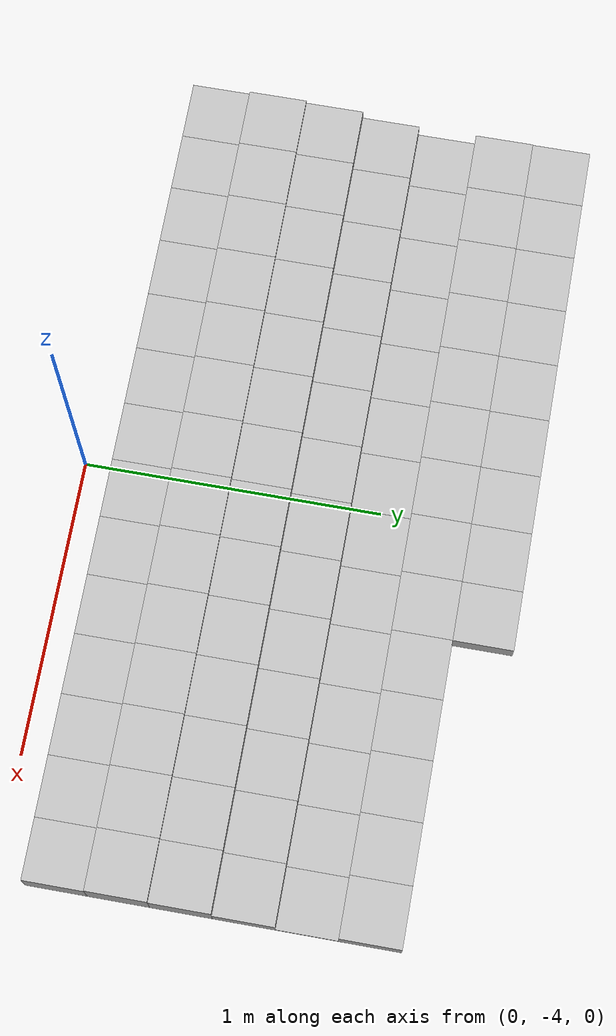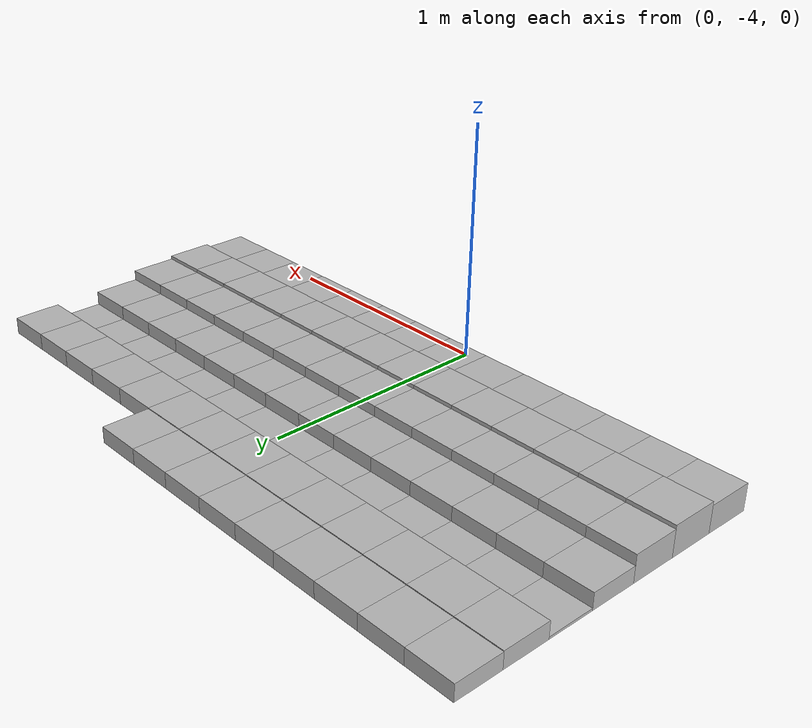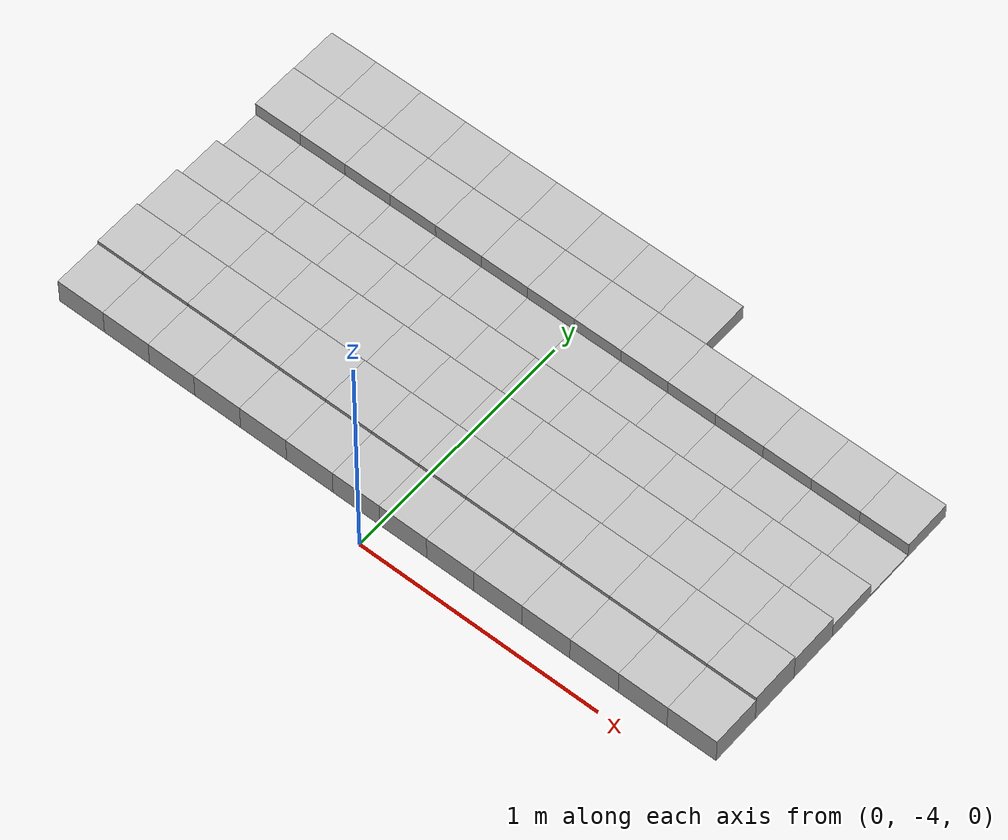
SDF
<sdf version="1.6">
 <model name="Terrain">
  <static>true</static>
  <link name="box_13_0">
   <pose>-1.3 -2.6 0.0339991204989 0 0 0</pose>
   <inertial>
    <mass>1.0</mass>
    <inertia><ixx>0.0</ixx><ixy>0.0</ixy><ixz>0.0</ixz><iyy>0.0</iyy><iyz>0.0</iyz><izz>0.0</izz></inertia>
   </inertial>
   <collision name="collision"><geometry><box><size>0.2 0.2 0.0679982409977</size></box></geometry></collision>
   <visual name="visual"><geometry><box><size>0.2 0.2 0.0679982409977</size></box></geometry></visual>
  </link>
  <link name="box_13_1">
   <pose>-1.1 -2.6 0.0339991204989 0 0 0</pose>
   <inertial>
    <mass>1.0</mass>
    <inertia><ixx>0.0</ixx><ixy>0.0</ixy><ixz>0.0</ixz><iyy>0.0</iyy><iyz>0.0</iyz><izz>0.0</izz></inertia>
   </inertial>
   <collision name="collision"><geometry><box><size>0.2 0.2 0.0679982409977</size></box></geometry></collision>
   <visual name="visual"><geometry><box><size>0.2 0.2 0.0679982409977</size></box></geometry></visual>
  </link>
  <link name="box_13_2">
   <pose>-0.9 -2.6 0.0339991204989 0 0 0</pose>
   <inertial>
    <mass>1.0</mass>
    <inertia><ixx>0.0</ixx><ixy>0.0</ixy><ixz>0.0</ixz><iyy>0.0</iyy><iyz>0.0</iyz><izz>0.0</izz></inertia>
   </inertial>
   <collision name="collision"><geometry><box><size>0.2 0.2 0.0679982409977</size></box></geometry></collision>
   <visual name="visual"><geometry><box><size>0.2 0.2 0.0679982409977</size></box></geometry></visual>
  </link>
  <link name="box_13_3">
   <pose>-0.7 -2.6 0.0339991204989 0 0 0</pose>
   <inertial>
    <mass>1.0</mass>
    <inertia><ixx>0.0</ixx><ixy>0.0</ixy><ixz>0.0</ixz><iyy>0.0</iyy><iyz>0.0</iyz><izz>0.0</izz></inertia>
   </inertial>
   <collision name="collision"><geometry><box><size>0.2 0.2 0.0679982409977</size></box></geometry></collision>
   <visual name="visual"><geometry><box><size>0.2 0.2 0.0679982409977</size></box></geometry></visual>
  </link>
  <link name="box_13_4">
   <pose>-0.5 -2.6 0.0339991204989 0 0 0</pose>
   <inertial>
    <mass>1.0</mass>
    <inertia><ixx>0.0</ixx><ixy>0.0</ixy><ixz>0.0</ixz><iyy>0.0</iyy><iyz>0.0</iyz><izz>0.0</izz></inertia>
   </inertial>
   <collision name="collision"><geometry><box><size>0.2 0.2 0.0679982409977</size></box></geometry></collision>
   <visual name="visual"><geometry><box><size>0.2 0.2 0.0679982409977</size></box></geometry></visual>
  </link>
  <link name="box_13_5">
   <pose>-0.3 -2.6 0.0339991204989 0 0 0</pose>
   <inertial>
    <mass>1.0</mass>
    <inertia><ixx>0.0</ixx><ixy>0.0</ixy><ixz>0.0</ixz><iyy>0.0</iyy><iyz>0.0</iyz><izz>0.0</izz></inertia>
   </inertial>
   <collision name="collision"><geometry><box><size>0.2 0.2 0.0679982409977</size></box></geometry></collision>
   <visual name="visual"><geometry><box><size>0.2 0.2 0.0679982409977</size></box></geometry></visual>
  </link>
  <link name="box_13_6">
   <pose>-0.1 -2.6 0.0339991204989 0 0 0</pose>
   <inertial>
    <mass>1.0</mass>
    <inertia><ixx>0.0</ixx><ixy>0.0</ixy><ixz>0.0</ixz><iyy>0.0</iyy><iyz>0.0</iyz><izz>0.0</izz></inertia>
   </inertial>
   <collision name="collision"><geometry><box><size>0.2 0.2 0.0679982409977</size></box></geometry></collision>
   <visual name="visual"><geometry><box><size>0.2 0.2 0.0679982409977</size></box></geometry></visual>
  </link>
  <link name="box_13_7">
   <pose>0.1 -2.6 0.0339991204989 0 0 0</pose>
   <inertial>
    <mass>1.0</mass>
    <inertia><ixx>0.0</ixx><ixy>0.0</ixy><ixz>0.0</ixz><iyy>0.0</iyy><iyz>0.0</iyz><izz>0.0</izz></inertia>
   </inertial>
   <collision name="collision"><geometry><box><size>0.2 0.2 0.0679982409977</size></box></geometry></collision>
   <visual name="visual"><geometry><box><size>0.2 0.2 0.0679982409977</size></box></geometry></visual>
  </link>
  <link name="box_13_8">
   <pose>0.3 -2.6 0.0339991204989 0 0 0</pose>
   <inertial>
    <mass>1.0</mass>
    <inertia><ixx>0.0</ixx><ixy>0.0</ixy><ixz>0.0</ixz><iyy>0.0</iyy><iyz>0.0</iyz><izz>0.0</izz></inertia>
   </inertial>
   <collision name="collision"><geometry><box><size>0.2 0.2 0.0679982409977</size></box></geometry></collision>
   <visual name="visual"><geometry><box><size>0.2 0.2 0.0679982409977</size></box></geometry></visual>
  </link>
  <link name="box_14_0">
   <pose>-1.3 -2.8 0.0356586918373 0 0 0</pose>
   <inertial>
    <mass>1.0</mass>
    <inertia><ixx>0.0</ixx><ixy>0.0</ixy><ixz>0.0</ixz><iyy>0.0</iyy><iyz>0.0</iyz><izz>0.0</izz></inertia>
   </inertial>
   <collision name="collision"><geometry><box><size>0.2 0.2 0.0713173836747</size></box></geometry></collision>
   <visual name="visual"><geometry><box><size>0.2 0.2 0.0713173836747</size></box></geometry></visual>
  </link>
  <link name="box_14_1">
   <pose>-1.1 -2.8 0.0356586918373 0 0 0</pose>
   <inertial>
    <mass>1.0</mass>
    <inertia><ixx>0.0</ixx><ixy>0.0</ixy><ixz>0.0</ixz><iyy>0.0</iyy><iyz>0.0</iyz><izz>0.0</izz></inertia>
   </inertial>
   <collision name="collision"><geometry><box><size>0.2 0.2 0.0713173836747</size></box></geometry></collision>
   <visual name="visual"><geometry><box><size>0.2 0.2 0.0713173836747</size></box></geometry></visual>
  </link>
  <link name="box_14_2">
   <pose>-0.9 -2.8 0.0356586918373 0 0 0</pose>
   <inertial>
    <mass>1.0</mass>
    <inertia><ixx>0.0</ixx><ixy>0.0</ixy><ixz>0.0</ixz><iyy>0.0</iyy><iyz>0.0</iyz><izz>0.0</izz></inertia>
   </inertial>
   <collision name="collision"><geometry><box><size>0.2 0.2 0.0713173836747</size></box></geometry></collision>
   <visual name="visual"><geometry><box><size>0.2 0.2 0.0713173836747</size></box></geometry></visual>
  </link>
  <link name="box_14_3">
   <pose>-0.7 -2.8 0.0356586918373 0 0 0</pose>
   <inertial>
    <mass>1.0</mass>
    <inertia><ixx>0.0</ixx><ixy>0.0</ixy><ixz>0.0</ixz><iyy>0.0</iyy><iyz>0.0</iyz><izz>0.0</izz></inertia>
   </inertial>
   <collision name="collision"><geometry><box><size>0.2 0.2 0.0713173836747</size></box></geometry></collision>
   <visual name="visual"><geometry><box><size>0.2 0.2 0.0713173836747</size></box></geometry></visual>
  </link>
  <link name="box_14_4">
   <pose>-0.5 -2.8 0.0356586918373 0 0 0</pose>
   <inertial>
    <mass>1.0</mass>
    <inertia><ixx>0.0</ixx><ixy>0.0</ixy><ixz>0.0</ixz><iyy>0.0</iyy><iyz>0.0</iyz><izz>0.0</izz></inertia>
   </inertial>
   <collision name="collision"><geometry><box><size>0.2 0.2 0.0713173836747</size></box></geometry></collision>
   <visual name="visual"><geometry><box><size>0.2 0.2 0.0713173836747</size></box></geometry></visual>
  </link>
  <link name="box_14_5">
   <pose>-0.3 -2.8 0.0356586918373 0 0 0</pose>
   <inertial>
    <mass>1.0</mass>
    <inertia><ixx>0.0</ixx><ixy>0.0</ixy><ixz>0.0</ixz><iyy>0.0</iyy><iyz>0.0</iyz><izz>0.0</izz></inertia>
   </inertial>
   <collision name="collision"><geometry><box><size>0.2 0.2 0.0713173836747</size></box></geometry></collision>
   <visual name="visual"><geometry><box><size>0.2 0.2 0.0713173836747</size></box></geometry></visual>
  </link>
  <link name="box_14_6">
   <pose>-0.1 -2.8 0.0356586918373 0 0 0</pose>
   <inertial>
    <mass>1.0</mass>
    <inertia><ixx>0.0</ixx><ixy>0.0</ixy><ixz>0.0</ixz><iyy>0.0</iyy><iyz>0.0</iyz><izz>0.0</izz></inertia>
   </inertial>
   <collision name="collision"><geometry><box><size>0.2 0.2 0.0713173836747</size></box></geometry></collision>
   <visual name="visual"><geometry><box><size>0.2 0.2 0.0713173836747</size></box></geometry></visual>
  </link>
  <link name="box_14_7">
   <pose>0.1 -2.8 0.0356586918373 0 0 0</pose>
   <inertial>
    <mass>1.0</mass>
    <inertia><ixx>0.0</ixx><ixy>0.0</ixy><ixz>0.0</ixz><iyy>0.0</iyy><iyz>0.0</iyz><izz>0.0</izz></inertia>
   </inertial>
   <collision name="collision"><geometry><box><size>0.2 0.2 0.0713173836747</size></box></geometry></collision>
   <visual name="visual"><geometry><box><size>0.2 0.2 0.0713173836747</size></box></geometry></visual>
  </link>
  <link name="box_14_8">
   <pose>0.3 -2.8 0.0356586918373 0 0 0</pose>
   <inertial>
    <mass>1.0</mass>
    <inertia><ixx>0.0</ixx><ixy>0.0</ixy><ixz>0.0</ixz><iyy>0.0</iyy><iyz>0.0</iyz><izz>0.0</izz></inertia>
   </inertial>
   <collision name="collision"><geometry><box><size>0.2 0.2 0.0713173836747</size></box></geometry></collision>
   <visual name="visual"><geometry><box><size>0.2 0.2 0.0713173836747</size></box></geometry></visual>
  </link>
  <link name="box_14_9">
   <pose>0.5 -2.8 0.0356586918373 0 0 0</pose>
   <inertial>
    <mass>1.0</mass>
    <inertia><ixx>0.0</ixx><ixy>0.0</ixy><ixz>0.0</ixz><iyy>0.0</iyy><iyz>0.0</iyz><izz>0.0</izz></inertia>
   </inertial>
   <collision name="collision"><geometry><box><size>0.2 0.2 0.0713173836747</size></box></geometry></collision>
   <visual name="visual"><geometry><box><size>0.2 0.2 0.0713173836747</size></box></geometry></visual>
  </link>
  <link name="box_14_10">
   <pose>0.7 -2.8 0.0356586918373 0 0 0</pose>
   <inertial>
    <mass>1.0</mass>
    <inertia><ixx>0.0</ixx><ixy>0.0</ixy><ixz>0.0</ixz><iyy>0.0</iyy><iyz>0.0</iyz><izz>0.0</izz></inertia>
   </inertial>
   <collision name="collision"><geometry><box><size>0.2 0.2 0.0713173836747</size></box></geometry></collision>
   <visual name="visual"><geometry><box><size>0.2 0.2 0.0713173836747</size></box></geometry></visual>
  </link>
  <link name="box_14_11">
   <pose>0.9 -2.8 0.0356586918373 0 0 0</pose>
   <inertial>
    <mass>1.0</mass>
    <inertia><ixx>0.0</ixx><ixy>0.0</ixy><ixz>0.0</ixz><iyy>0.0</iyy><iyz>0.0</iyz><izz>0.0</izz></inertia>
   </inertial>
   <collision name="collision"><geometry><box><size>0.2 0.2 0.0713173836747</size></box></geometry></collision>
   <visual name="visual"><geometry><box><size>0.2 0.2 0.0713173836747</size></box></geometry></visual>
  </link>
  <link name="box_14_12">
   <pose>1.1 -2.8 0.0356586918373 0 0 0</pose>
   <inertial>
    <mass>1.0</mass>
    <inertia><ixx>0.0</ixx><ixy>0.0</ixy><ixz>0.0</ixz><iyy>0.0</iyy><iyz>0.0</iyz><izz>0.0</izz></inertia>
   </inertial>
   <collision name="collision"><geometry><box><size>0.2 0.2 0.0713173836747</size></box></geometry></collision>
   <visual name="visual"><geometry><box><size>0.2 0.2 0.0713173836747</size></box></geometry></visual>
  </link>
  <link name="box_14_13">
   <pose>1.3 -2.8 0.0356586918373 0 0 0</pose>
   <inertial>
    <mass>1.0</mass>
    <inertia><ixx>0.0</ixx><ixy>0.0</ixy><ixz>0.0</ixz><iyy>0.0</iyy><iyz>0.0</iyz><izz>0.0</izz></inertia>
   </inertial>
   <collision name="collision"><geometry><box><size>0.2 0.2 0.0713173836747</size></box></geometry></collision>
   <visual name="visual"><geometry><box><size>0.2 0.2 0.0713173836747</size></box></geometry></visual>
  </link>
  <link name="box_15_0">
   <pose>-1.3 -3.0 0.00497859184319 0 0 0</pose>
   <inertial>
    <mass>1.0</mass>
    <inertia><ixx>0.0</ixx><ixy>0.0</ixy><ixz>0.0</ixz><iyy>0.0</iyy><iyz>0.0</iyz><izz>0.0</izz></inertia>
   </inertial>
   <collision name="collision"><geometry><box><size>0.2 0.2 0.00995718368637</size></box></geometry></collision>
   <visual name="visual"><geometry><box><size>0.2 0.2 0.00995718368637</size></box></geometry></visual>
  </link>
  <link name="box_15_1">
   <pose>-1.1 -3.0 0.00497859184319 0 0 0</pose>
   <inertial>
    <mass>1.0</mass>
    <inertia><ixx>0.0</ixx><ixy>0.0</ixy><ixz>0.0</ixz><iyy>0.0</iyy><iyz>0.0</iyz><izz>0.0</izz></inertia>
   </inertial>
   <collision name="collision"><geometry><box><size>0.2 0.2 0.00995718368637</size></box></geometry></collision>
   <visual name="visual"><geometry><box><size>0.2 0.2 0.00995718368637</size></box></geometry></visual>
  </link>
  <link name="box_15_2">
   <pose>-0.9 -3.0 0.00497859184319 0 0 0</pose>
   <inertial>
    <mass>1.0</mass>
    <inertia><ixx>0.0</ixx><ixy>0.0</ixy><ixz>0.0</ixz><iyy>0.0</iyy><iyz>0.0</iyz><izz>0.0</izz></inertia>
   </inertial>
   <collision name="collision"><geometry><box><size>0.2 0.2 0.00995718368637</size></box></geometry></collision>
   <visual name="visual"><geometry><box><size>0.2 0.2 0.00995718368637</size></box></geometry></visual>
  </link>
  <link name="box_15_3">
   <pose>-0.7 -3.0 0.00497859184319 0 0 0</pose>
   <inertial>
    <mass>1.0</mass>
    <inertia><ixx>0.0</ixx><ixy>0.0</ixy><ixz>0.0</ixz><iyy>0.0</iyy><iyz>0.0</iyz><izz>0.0</izz></inertia>
   </inertial>
   <collision name="collision"><geometry><box><size>0.2 0.2 0.00995718368637</size></box></geometry></collision>
   <visual name="visual"><geometry><box><size>0.2 0.2 0.00995718368637</size></box></geometry></visual>
  </link>
  <link name="box_15_4">
   <pose>-0.5 -3.0 0.00497859184319 0 0 0</pose>
   <inertial>
    <mass>1.0</mass>
    <inertia><ixx>0.0</ixx><ixy>0.0</ixy><ixz>0.0</ixz><iyy>0.0</iyy><iyz>0.0</iyz><izz>0.0</izz></inertia>
   </inertial>
   <collision name="collision"><geometry><box><size>0.2 0.2 0.00995718368637</size></box></geometry></collision>
   <visual name="visual"><geometry><box><size>0.2 0.2 0.00995718368637</size></box></geometry></visual>
  </link>
  <link name="box_15_5">
   <pose>-0.3 -3.0 0.00497859184319 0 0 0</pose>
   <inertial>
    <mass>1.0</mass>
    <inertia><ixx>0.0</ixx><ixy>0.0</ixy><ixz>0.0</ixz><iyy>0.0</iyy><iyz>0.0</iyz><izz>0.0</izz></inertia>
   </inertial>
   <collision name="collision"><geometry><box><size>0.2 0.2 0.00995718368637</size></box></geometry></collision>
   <visual name="visual"><geometry><box><size>0.2 0.2 0.00995718368637</size></box></geometry></visual>
  </link>
  <link name="box_15_6">
   <pose>-0.1 -3.0 0.00497859184319 0 0 0</pose>
   <inertial>
    <mass>1.0</mass>
    <inertia><ixx>0.0</ixx><ixy>0.0</ixy><ixz>0.0</ixz><iyy>0.0</iyy><iyz>0.0</iyz><izz>0.0</izz></inertia>
   </inertial>
   <collision name="collision"><geometry><box><size>0.2 0.2 0.00995718368637</size></box></geometry></collision>
   <visual name="visual"><geometry><box><size>0.2 0.2 0.00995718368637</size></box></geometry></visual>
  </link>
  <link name="box_15_7">
   <pose>0.1 -3.0 0.00497859184319 0 0 0</pose>
   <inertial>
    <mass>1.0</mass>
    <inertia><ixx>0.0</ixx><ixy>0.0</ixy><ixz>0.0</ixz><iyy>0.0</iyy><iyz>0.0</iyz><izz>0.0</izz></inertia>
   </inertial>
   <collision name="collision"><geometry><box><size>0.2 0.2 0.00995718368637</size></box></geometry></collision>
   <visual name="visual"><geometry><box><size>0.2 0.2 0.00995718368637</size></box></geometry></visual>
  </link>
  <link name="box_15_8">
   <pose>0.3 -3.0 0.00497859184319 0 0 0</pose>
   <inertial>
    <mass>1.0</mass>
    <inertia><ixx>0.0</ixx><ixy>0.0</ixy><ixz>0.0</ixz><iyy>0.0</iyy><iyz>0.0</iyz><izz>0.0</izz></inertia>
   </inertial>
   <collision name="collision"><geometry><box><size>0.2 0.2 0.00995718368637</size></box></geometry></collision>
   <visual name="visual"><geometry><box><size>0.2 0.2 0.00995718368637</size></box></geometry></visual>
  </link>
  <link name="box_15_9">
   <pose>0.5 -3.0 0.00497859184319 0 0 0</pose>
   <inertial>
    <mass>1.0</mass>
    <inertia><ixx>0.0</ixx><ixy>0.0</ixy><ixz>0.0</ixz><iyy>0.0</iyy><iyz>0.0</iyz><izz>0.0</izz></inertia>
   </inertial>
   <collision name="collision"><geometry><box><size>0.2 0.2 0.00995718368637</size></box></geometry></collision>
   <visual name="visual"><geometry><box><size>0.2 0.2 0.00995718368637</size></box></geometry></visual>
  </link>
  <link name="box_15_10">
   <pose>0.7 -3.0 0.00497859184319 0 0 0</pose>
   <inertial>
    <mass>1.0</mass>
    <inertia><ixx>0.0</ixx><ixy>0.0</ixy><ixz>0.0</ixz><iyy>0.0</iyy><iyz>0.0</iyz><izz>0.0</izz></inertia>
   </inertial>
   <collision name="collision"><geometry><box><size>0.2 0.2 0.00995718368637</size></box></geometry></collision>
   <visual name="visual"><geometry><box><size>0.2 0.2 0.00995718368637</size></box></geometry></visual>
  </link>
  <link name="box_15_11">
   <pose>0.9 -3.0 0.00497859184319 0 0 0</pose>
   <inertial>
    <mass>1.0</mass>
    <inertia><ixx>0.0</ixx><ixy>0.0</ixy><ixz>0.0</ixz><iyy>0.0</iyy><iyz>0.0</iyz><izz>0.0</izz></inertia>
   </inertial>
   <collision name="collision"><geometry><box><size>0.2 0.2 0.00995718368637</size></box></geometry></collision>
   <visual name="visual"><geometry><box><size>0.2 0.2 0.00995718368637</size></box></geometry></visual>
  </link>
  <link name="box_15_12">
   <pose>1.1 -3.0 0.00497859184319 0 0 0</pose>
   <inertial>
    <mass>1.0</mass>
    <inertia><ixx>0.0</ixx><ixy>0.0</ixy><ixz>0.0</ixz><iyy>0.0</iyy><iyz>0.0</iyz><izz>0.0</izz></inertia>
   </inertial>
   <collision name="collision"><geometry><box><size>0.2 0.2 0.00995718368637</size></box></geometry></collision>
   <visual name="visual"><geometry><box><size>0.2 0.2 0.00995718368637</size></box></geometry></visual>
  </link>
  <link name="box_15_13">
   <pose>1.3 -3.0 0.00497859184319 0 0 0</pose>
   <inertial>
    <mass>1.0</mass>
    <inertia><ixx>0.0</ixx><ixy>0.0</ixy><ixz>0.0</ixz><iyy>0.0</iyy><iyz>0.0</iyz><izz>0.0</izz></inertia>
   </inertial>
   <collision name="collision"><geometry><box><size>0.2 0.2 0.00995718368637</size></box></geometry></collision>
   <visual name="visual"><geometry><box><size>0.2 0.2 0.00995718368637</size></box></geometry></visual>
  </link>
  <link name="box_16_0">
   <pose>-1.3 -3.2 0.034655805832 0 0 0</pose>
   <inertial>
    <mass>1.0</mass>
    <inertia><ixx>0.0</ixx><ixy>0.0</ixy><ixz>0.0</ixz><iyy>0.0</iyy><iyz>0.0</iyz><izz>0.0</izz></inertia>
   </inertial>
   <collision name="collision"><geometry><box><size>0.2 0.2 0.069311611664</size></box></geometry></collision>
   <visual name="visual"><geometry><box><size>0.2 0.2 0.069311611664</size></box></geometry></visual>
  </link>
  <link name="box_16_1">
   <pose>-1.1 -3.2 0.034655805832 0 0 0</pose>
   <inertial>
    <mass>1.0</mass>
    <inertia><ixx>0.0</ixx><ixy>0.0</ixy><ixz>0.0</ixz><iyy>0.0</iyy><iyz>0.0</iyz><izz>0.0</izz></inertia>
   </inertial>
   <collision name="collision"><geometry><box><size>0.2 0.2 0.069311611664</size></box></geometry></collision>
   <visual name="visual"><geometry><box><size>0.2 0.2 0.069311611664</size></box></geometry></visual>
  </link>
  <link name="box_16_2">
   <pose>-0.9 -3.2 0.034655805832 0 0 0</pose>
   <inertial>
    <mass>1.0</mass>
    <inertia><ixx>0.0</ixx><ixy>0.0</ixy><ixz>0.0</ixz><iyy>0.0</iyy><iyz>0.0</iyz><izz>0.0</izz></inertia>
   </inertial>
   <collision name="collision"><geometry><box><size>0.2 0.2 0.069311611664</size></box></geometry></collision>
   <visual name="visual"><geometry><box><size>0.2 0.2 0.069311611664</size></box></geometry></visual>
  </link>
  <link name="box_16_3">
   <pose>-0.7 -3.2 0.034655805832 0 0 0</pose>
   <inertial>
    <mass>1.0</mass>
    <inertia><ixx>0.0</ixx><ixy>0.0</ixy><ixz>0.0</ixz><iyy>0.0</iyy><iyz>0.0</iyz><izz>0.0</izz></inertia>
   </inertial>
   <collision name="collision"><geometry><box><size>0.2 0.2 0.069311611664</size></box></geometry></collision>
   <visual name="visual"><geometry><box><size>0.2 0.2 0.069311611664</size></box></geometry></visual>
  </link>
  <link name="box_16_4">
   <pose>-0.5 -3.2 0.034655805832 0 0 0</pose>
   <inertial>
    <mass>1.0</mass>
    <inertia><ixx>0.0</ixx><ixy>0.0</ixy><ixz>0.0</ixz><iyy>0.0</iyy><iyz>0.0</iyz><izz>0.0</izz></inertia>
   </inertial>
   <collision name="collision"><geometry><box><size>0.2 0.2 0.069311611664</size></box></geometry></collision>
   <visual name="visual"><geometry><box><size>0.2 0.2 0.069311611664</size></box></geometry></visual>
  </link>
  <link name="box_16_5">
   <pose>-0.3 -3.2 0.034655805832 0 0 0</pose>
   <inertial>
    <mass>1.0</mass>
    <inertia><ixx>0.0</ixx><ixy>0.0</ixy><ixz>0.0</ixz><iyy>0.0</iyy><iyz>0.0</iyz><izz>0.0</izz></inertia>
   </inertial>
   <collision name="collision"><geometry><box><size>0.2 0.2 0.069311611664</size></box></geometry></collision>
   <visual name="visual"><geometry><box><size>0.2 0.2 0.069311611664</size></box></geometry></visual>
  </link>
  <link name="box_16_6">
   <pose>-0.1 -3.2 0.034655805832 0 0 0</pose>
   <inertial>
    <mass>1.0</mass>
    <inertia><ixx>0.0</ixx><ixy>0.0</ixy><ixz>0.0</ixz><iyy>0.0</iyy><iyz>0.0</iyz><izz>0.0</izz></inertia>
   </inertial>
   <collision name="collision"><geometry><box><size>0.2 0.2 0.069311611664</size></box></geometry></collision>
   <visual name="visual"><geometry><box><size>0.2 0.2 0.069311611664</size></box></geometry></visual>
  </link>
  <link name="box_16_7">
   <pose>0.1 -3.2 0.034655805832 0 0 0</pose>
   <inertial>
    <mass>1.0</mass>
    <inertia><ixx>0.0</ixx><ixy>0.0</ixy><ixz>0.0</ixz><iyy>0.0</iyy><iyz>0.0</iyz><izz>0.0</izz></inertia>
   </inertial>
   <collision name="collision"><geometry><box><size>0.2 0.2 0.069311611664</size></box></geometry></collision>
   <visual name="visual"><geometry><box><size>0.2 0.2 0.069311611664</size></box></geometry></visual>
  </link>
  <link name="box_16_8">
   <pose>0.3 -3.2 0.034655805832 0 0 0</pose>
   <inertial>
    <mass>1.0</mass>
    <inertia><ixx>0.0</ixx><ixy>0.0</ixy><ixz>0.0</ixz><iyy>0.0</iyy><iyz>0.0</iyz><izz>0.0</izz></inertia>
   </inertial>
   <collision name="collision"><geometry><box><size>0.2 0.2 0.069311611664</size></box></geometry></collision>
   <visual name="visual"><geometry><box><size>0.2 0.2 0.069311611664</size></box></geometry></visual>
  </link>
  <link name="box_16_9">
   <pose>0.5 -3.2 0.034655805832 0 0 0</pose>
   <inertial>
    <mass>1.0</mass>
    <inertia><ixx>0.0</ixx><ixy>0.0</ixy><ixz>0.0</ixz><iyy>0.0</iyy><iyz>0.0</iyz><izz>0.0</izz></inertia>
   </inertial>
   <collision name="collision"><geometry><box><size>0.2 0.2 0.069311611664</size></box></geometry></collision>
   <visual name="visual"><geometry><box><size>0.2 0.2 0.069311611664</size></box></geometry></visual>
  </link>
  <link name="box_16_10">
   <pose>0.7 -3.2 0.034655805832 0 0 0</pose>
   <inertial>
    <mass>1.0</mass>
    <inertia><ixx>0.0</ixx><ixy>0.0</ixy><ixz>0.0</ixz><iyy>0.0</iyy><iyz>0.0</iyz><izz>0.0</izz></inertia>
   </inertial>
   <collision name="collision"><geometry><box><size>0.2 0.2 0.069311611664</size></box></geometry></collision>
   <visual name="visual"><geometry><box><size>0.2 0.2 0.069311611664</size></box></geometry></visual>
  </link>
  <link name="box_16_11">
   <pose>0.9 -3.2 0.034655805832 0 0 0</pose>
   <inertial>
    <mass>1.0</mass>
    <inertia><ixx>0.0</ixx><ixy>0.0</ixy><ixz>0.0</ixz><iyy>0.0</iyy><iyz>0.0</iyz><izz>0.0</izz></inertia>
   </inertial>
   <collision name="collision"><geometry><box><size>0.2 0.2 0.069311611664</size></box></geometry></collision>
   <visual name="visual"><geometry><box><size>0.2 0.2 0.069311611664</size></box></geometry></visual>
  </link>
  <link name="box_16_12">
   <pose>1.1 -3.2 0.034655805832 0 0 0</pose>
   <inertial>
    <mass>1.0</mass>
    <inertia><ixx>0.0</ixx><ixy>0.0</ixy><ixz>0.0</ixz><iyy>0.0</iyy><iyz>0.0</iyz><izz>0.0</izz></inertia>
   </inertial>
   <collision name="collision"><geometry><box><size>0.2 0.2 0.069311611664</size></box></geometry></collision>
   <visual name="visual"><geometry><box><size>0.2 0.2 0.069311611664</size></box></geometry></visual>
  </link>
  <link name="box_16_13">
   <pose>1.3 -3.2 0.034655805832 0 0 0</pose>
   <inertial>
    <mass>1.0</mass>
    <inertia><ixx>0.0</ixx><ixy>0.0</ixy><ixz>0.0</ixz><iyy>0.0</iyy><iyz>0.0</iyz><izz>0.0</izz></inertia>
   </inertial>
   <collision name="collision"><geometry><box><size>0.2 0.2 0.069311611664</size></box></geometry></collision>
   <visual name="visual"><geometry><box><size>0.2 0.2 0.069311611664</size></box></geometry></visual>
  </link>
  <link name="box_17_0">
   <pose>-1.3 -3.4 0.0564299051171 0 0 0</pose>
   <inertial>
    <mass>1.0</mass>
    <inertia><ixx>0.0</ixx><ixy>0.0</ixy><ixz>0.0</ixz><iyy>0.0</iyy><iyz>0.0</iyz><izz>0.0</izz></inertia>
   </inertial>
   <collision name="collision"><geometry><box><size>0.2 0.2 0.112859810234</size></box></geometry></collision>
   <visual name="visual"><geometry><box><size>0.2 0.2 0.112859810234</size></box></geometry></visual>
  </link>
  <link name="box_17_1">
   <pose>-1.1 -3.4 0.0564299051171 0 0 0</pose>
   <inertial>
    <mass>1.0</mass>
    <inertia><ixx>0.0</ixx><ixy>0.0</ixy><ixz>0.0</ixz><iyy>0.0</iyy><iyz>0.0</iyz><izz>0.0</izz></inertia>
   </inertial>
   <collision name="collision"><geometry><box><size>0.2 0.2 0.112859810234</size></box></geometry></collision>
   <visual name="visual"><geometry><box><size>0.2 0.2 0.112859810234</size></box></geometry></visual>
  </link>
  <link name="box_17_2">
   <pose>-0.9 -3.4 0.0564299051171 0 0 0</pose>
   <inertial>
    <mass>1.0</mass>
    <inertia><ixx>0.0</ixx><ixy>0.0</ixy><ixz>0.0</ixz><iyy>0.0</iyy><iyz>0.0</iyz><izz>0.0</izz></inertia>
   </inertial>
   <collision name="collision"><geometry><box><size>0.2 0.2 0.112859810234</size></box></geometry></collision>
   <visual name="visual"><geometry><box><size>0.2 0.2 0.112859810234</size></box></geometry></visual>
  </link>
  <link name="box_17_3">
   <pose>-0.7 -3.4 0.0564299051171 0 0 0</pose>
   <inertial>
    <mass>1.0</mass>
    <inertia><ixx>0.0</ixx><ixy>0.0</ixy><ixz>0.0</ixz><iyy>0.0</iyy><iyz>0.0</iyz><izz>0.0</izz></inertia>
   </inertial>
   <collision name="collision"><geometry><box><size>0.2 0.2 0.112859810234</size></box></geometry></collision>
   <visual name="visual"><geometry><box><size>0.2 0.2 0.112859810234</size></box></geometry></visual>
  </link>
  <link name="box_17_4">
   <pose>-0.5 -3.4 0.0564299051171 0 0 0</pose>
   <inertial>
    <mass>1.0</mass>
    <inertia><ixx>0.0</ixx><ixy>0.0</ixy><ixz>0.0</ixz><iyy>0.0</iyy><iyz>0.0</iyz><izz>0.0</izz></inertia>
   </inertial>
   <collision name="collision"><geometry><box><size>0.2 0.2 0.112859810234</size></box></geometry></collision>
   <visual name="visual"><geometry><box><size>0.2 0.2 0.112859810234</size></box></geometry></visual>
  </link>
  <link name="box_17_5">
   <pose>-0.3 -3.4 0.0564299051171 0 0 0</pose>
   <inertial>
    <mass>1.0</mass>
    <inertia><ixx>0.0</ixx><ixy>0.0</ixy><ixz>0.0</ixz><iyy>0.0</iyy><iyz>0.0</iyz><izz>0.0</izz></inertia>
   </inertial>
   <collision name="collision"><geometry><box><size>0.2 0.2 0.112859810234</size></box></geometry></collision>
   <visual name="visual"><geometry><box><size>0.2 0.2 0.112859810234</size></box></geometry></visual>
  </link>
  <link name="box_17_6">
   <pose>-0.1 -3.4 0.0564299051171 0 0 0</pose>
   <inertial>
    <mass>1.0</mass>
    <inertia><ixx>0.0</ixx><ixy>0.0</ixy><ixz>0.0</ixz><iyy>0.0</iyy><iyz>0.0</iyz><izz>0.0</izz></inertia>
   </inertial>
   <collision name="collision"><geometry><box><size>0.2 0.2 0.112859810234</size></box></geometry></collision>
   <visual name="visual"><geometry><box><size>0.2 0.2 0.112859810234</size></box></geometry></visual>
  </link>
  <link name="box_17_7">
   <pose>0.1 -3.4 0.0564299051171 0 0 0</pose>
   <inertial>
    <mass>1.0</mass>
    <inertia><ixx>0.0</ixx><ixy>0.0</ixy><ixz>0.0</ixz><iyy>0.0</iyy><iyz>0.0</iyz><izz>0.0</izz></inertia>
   </inertial>
   <collision name="collision"><geometry><box><size>0.2 0.2 0.112859810234</size></box></geometry></collision>
   <visual name="visual"><geometry><box><size>0.2 0.2 0.112859810234</size></box></geometry></visual>
  </link>
  <link name="box_17_8">
   <pose>0.3 -3.4 0.0564299051171 0 0 0</pose>
   <inertial>
    <mass>1.0</mass>
    <inertia><ixx>0.0</ixx><ixy>0.0</ixy><ixz>0.0</ixz><iyy>0.0</iyy><iyz>0.0</iyz><izz>0.0</izz></inertia>
   </inertial>
   <collision name="collision"><geometry><box><size>0.2 0.2 0.112859810234</size></box></geometry></collision>
   <visual name="visual"><geometry><box><size>0.2 0.2 0.112859810234</size></box></geometry></visual>
  </link>
  <link name="box_17_9">
   <pose>0.5 -3.4 0.0564299051171 0 0 0</pose>
   <inertial>
    <mass>1.0</mass>
    <inertia><ixx>0.0</ixx><ixy>0.0</ixy><ixz>0.0</ixz><iyy>0.0</iyy><iyz>0.0</iyz><izz>0.0</izz></inertia>
   </inertial>
   <collision name="collision"><geometry><box><size>0.2 0.2 0.112859810234</size></box></geometry></collision>
   <visual name="visual"><geometry><box><size>0.2 0.2 0.112859810234</size></box></geometry></visual>
  </link>
  <link name="box_17_10">
   <pose>0.7 -3.4 0.0564299051171 0 0 0</pose>
   <inertial>
    <mass>1.0</mass>
    <inertia><ixx>0.0</ixx><ixy>0.0</ixy><ixz>0.0</ixz><iyy>0.0</iyy><iyz>0.0</iyz><izz>0.0</izz></inertia>
   </inertial>
   <collision name="collision"><geometry><box><size>0.2 0.2 0.112859810234</size></box></geometry></collision>
   <visual name="visual"><geometry><box><size>0.2 0.2 0.112859810234</size></box></geometry></visual>
  </link>
  <link name="box_17_11">
   <pose>0.9 -3.4 0.0564299051171 0 0 0</pose>
   <inertial>
    <mass>1.0</mass>
    <inertia><ixx>0.0</ixx><ixy>0.0</ixy><ixz>0.0</ixz><iyy>0.0</iyy><iyz>0.0</iyz><izz>0.0</izz></inertia>
   </inertial>
   <collision name="collision"><geometry><box><size>0.2 0.2 0.112859810234</size></box></geometry></collision>
   <visual name="visual"><geometry><box><size>0.2 0.2 0.112859810234</size></box></geometry></visual>
  </link>
  <link name="box_17_12">
   <pose>1.1 -3.4 0.0564299051171 0 0 0</pose>
   <inertial>
    <mass>1.0</mass>
    <inertia><ixx>0.0</ixx><ixy>0.0</ixy><ixz>0.0</ixz><iyy>0.0</iyy><iyz>0.0</iyz><izz>0.0</izz></inertia>
   </inertial>
   <collision name="collision"><geometry><box><size>0.2 0.2 0.112859810234</size></box></geometry></collision>
   <visual name="visual"><geometry><box><size>0.2 0.2 0.112859810234</size></box></geometry></visual>
  </link>
  <link name="box_17_13">
   <pose>1.3 -3.4 0.0564299051171 0 0 0</pose>
   <inertial>
    <mass>1.0</mass>
    <inertia><ixx>0.0</ixx><ixy>0.0</ixy><ixz>0.0</ixz><iyy>0.0</iyy><iyz>0.0</iyz><izz>0.0</izz></inertia>
   </inertial>
   <collision name="collision"><geometry><box><size>0.2 0.2 0.112859810234</size></box></geometry></collision>
   <visual name="visual"><geometry><box><size>0.2 0.2 0.112859810234</size></box></geometry></visual>
  </link>
  <link name="box_18_0">
   <pose>-1.3 -3.6 0.0641254640651 0 0 0</pose>
   <inertial>
    <mass>1.0</mass>
    <inertia><ixx>0.0</ixx><ixy>0.0</ixy><ixz>0.0</ixz><iyy>0.0</iyy><iyz>0.0</iyz><izz>0.0</izz></inertia>
   </inertial>
   <collision name="collision"><geometry><box><size>0.2 0.2 0.12825092813</size></box></geometry></collision>
   <visual name="visual"><geometry><box><size>0.2 0.2 0.12825092813</size></box></geometry></visual>
  </link>
  <link name="box_18_1">
   <pose>-1.1 -3.6 0.0641254640651 0 0 0</pose>
   <inertial>
    <mass>1.0</mass>
    <inertia><ixx>0.0</ixx><ixy>0.0</ixy><ixz>0.0</ixz><iyy>0.0</iyy><iyz>0.0</iyz><izz>0.0</izz></inertia>
   </inertial>
   <collision name="collision"><geometry><box><size>0.2 0.2 0.12825092813</size></box></geometry></collision>
   <visual name="visual"><geometry><box><size>0.2 0.2 0.12825092813</size></box></geometry></visual>
  </link>
  <link name="box_18_2">
   <pose>-0.9 -3.6 0.0641254640651 0 0 0</pose>
   <inertial>
    <mass>1.0</mass>
    <inertia><ixx>0.0</ixx><ixy>0.0</ixy><ixz>0.0</ixz><iyy>0.0</iyy><iyz>0.0</iyz><izz>0.0</izz></inertia>
   </inertial>
   <collision name="collision"><geometry><box><size>0.2 0.2 0.12825092813</size></box></geometry></collision>
   <visual name="visual"><geometry><box><size>0.2 0.2 0.12825092813</size></box></geometry></visual>
  </link>
  <link name="box_18_3">
   <pose>-0.7 -3.6 0.0641254640651 0 0 0</pose>
   <inertial>
    <mass>1.0</mass>
    <inertia><ixx>0.0</ixx><ixy>0.0</ixy><ixz>0.0</ixz><iyy>0.0</iyy><iyz>0.0</iyz><izz>0.0</izz></inertia>
   </inertial>
   <collision name="collision"><geometry><box><size>0.2 0.2 0.12825092813</size></box></geometry></collision>
   <visual name="visual"><geometry><box><size>0.2 0.2 0.12825092813</size></box></geometry></visual>
  </link>
  <link name="box_18_4">
   <pose>-0.5 -3.6 0.0641254640651 0 0 0</pose>
   <inertial>
    <mass>1.0</mass>
    <inertia><ixx>0.0</ixx><ixy>0.0</ixy><ixz>0.0</ixz><iyy>0.0</iyy><iyz>0.0</iyz><izz>0.0</izz></inertia>
   </inertial>
   <collision name="collision"><geometry><box><size>0.2 0.2 0.12825092813</size></box></geometry></collision>
   <visual name="visual"><geometry><box><size>0.2 0.2 0.12825092813</size></box></geometry></visual>
  </link>
  <link name="box_18_5">
   <pose>-0.3 -3.6 0.0641254640651 0 0 0</pose>
   <inertial>
    <mass>1.0</mass>
    <inertia><ixx>0.0</ixx><ixy>0.0</ixy><ixz>0.0</ixz><iyy>0.0</iyy><iyz>0.0</iyz><izz>0.0</izz></inertia>
   </inertial>
   <collision name="collision"><geometry><box><size>0.2 0.2 0.12825092813</size></box></geometry></collision>
   <visual name="visual"><geometry><box><size>0.2 0.2 0.12825092813</size></box></geometry></visual>
  </link>
  <link name="box_18_6">
   <pose>-0.1 -3.6 0.0641254640651 0 0 0</pose>
   <inertial>
    <mass>1.0</mass>
    <inertia><ixx>0.0</ixx><ixy>0.0</ixy><ixz>0.0</ixz><iyy>0.0</iyy><iyz>0.0</iyz><izz>0.0</izz></inertia>
   </inertial>
   <collision name="collision"><geometry><box><size>0.2 0.2 0.12825092813</size></box></geometry></collision>
   <visual name="visual"><geometry><box><size>0.2 0.2 0.12825092813</size></box></geometry></visual>
  </link>
  <link name="box_18_7">
   <pose>0.1 -3.6 0.0641254640651 0 0 0</pose>
   <inertial>
    <mass>1.0</mass>
    <inertia><ixx>0.0</ixx><ixy>0.0</ixy><ixz>0.0</ixz><iyy>0.0</iyy><iyz>0.0</iyz><izz>0.0</izz></inertia>
   </inertial>
   <collision name="collision"><geometry><box><size>0.2 0.2 0.12825092813</size></box></geometry></collision>
   <visual name="visual"><geometry><box><size>0.2 0.2 0.12825092813</size></box></geometry></visual>
  </link>
  <link name="box_18_8">
   <pose>0.3 -3.6 0.0641254640651 0 0 0</pose>
   <inertial>
    <mass>1.0</mass>
    <inertia><ixx>0.0</ixx><ixy>0.0</ixy><ixz>0.0</ixz><iyy>0.0</iyy><iyz>0.0</iyz><izz>0.0</izz></inertia>
   </inertial>
   <collision name="collision"><geometry><box><size>0.2 0.2 0.12825092813</size></box></geometry></collision>
   <visual name="visual"><geometry><box><size>0.2 0.2 0.12825092813</size></box></geometry></visual>
  </link>
  <link name="box_18_9">
   <pose>0.5 -3.6 0.0641254640651 0 0 0</pose>
   <inertial>
    <mass>1.0</mass>
    <inertia><ixx>0.0</ixx><ixy>0.0</ixy><ixz>0.0</ixz><iyy>0.0</iyy><iyz>0.0</iyz><izz>0.0</izz></inertia>
   </inertial>
   <collision name="collision"><geometry><box><size>0.2 0.2 0.12825092813</size></box></geometry></collision>
   <visual name="visual"><geometry><box><size>0.2 0.2 0.12825092813</size></box></geometry></visual>
  </link>
  <link name="box_18_10">
   <pose>0.7 -3.6 0.0641254640651 0 0 0</pose>
   <inertial>
    <mass>1.0</mass>
    <inertia><ixx>0.0</ixx><ixy>0.0</ixy><ixz>0.0</ixz><iyy>0.0</iyy><iyz>0.0</iyz><izz>0.0</izz></inertia>
   </inertial>
   <collision name="collision"><geometry><box><size>0.2 0.2 0.12825092813</size></box></geometry></collision>
   <visual name="visual"><geometry><box><size>0.2 0.2 0.12825092813</size></box></geometry></visual>
  </link>
  <link name="box_18_11">
   <pose>0.9 -3.6 0.0641254640651 0 0 0</pose>
   <inertial>
    <mass>1.0</mass>
    <inertia><ixx>0.0</ixx><ixy>0.0</ixy><ixz>0.0</ixz><iyy>0.0</iyy><iyz>0.0</iyz><izz>0.0</izz></inertia>
   </inertial>
   <collision name="collision"><geometry><box><size>0.2 0.2 0.12825092813</size></box></geometry></collision>
   <visual name="visual"><geometry><box><size>0.2 0.2 0.12825092813</size></box></geometry></visual>
  </link>
  <link name="box_18_12">
   <pose>1.1 -3.6 0.0641254640651 0 0 0</pose>
   <inertial>
    <mass>1.0</mass>
    <inertia><ixx>0.0</ixx><ixy>0.0</ixy><ixz>0.0</ixz><iyy>0.0</iyy><iyz>0.0</iyz><izz>0.0</izz></inertia>
   </inertial>
   <collision name="collision"><geometry><box><size>0.2 0.2 0.12825092813</size></box></geometry></collision>
   <visual name="visual"><geometry><box><size>0.2 0.2 0.12825092813</size></box></geometry></visual>
  </link>
  <link name="box_18_13">
   <pose>1.3 -3.6 0.0641254640651 0 0 0</pose>
   <inertial>
    <mass>1.0</mass>
    <inertia><ixx>0.0</ixx><ixy>0.0</ixy><ixz>0.0</ixz><iyy>0.0</iyy><iyz>0.0</iyz><izz>0.0</izz></inertia>
   </inertial>
   <collision name="collision"><geometry><box><size>0.2 0.2 0.12825092813</size></box></geometry></collision>
   <visual name="visual"><geometry><box><size>0.2 0.2 0.12825092813</size></box></geometry></visual>
  </link>
  <link name="box_19_0">
   <pose>-1.3 -3.8 0.0564347412186 0 0 0</pose>
   <inertial>
    <mass>1.0</mass>
    <inertia><ixx>0.0</ixx><ixy>0.0</ixy><ixz>0.0</ixz><iyy>0.0</iyy><iyz>0.0</iyz><izz>0.0</izz></inertia>
   </inertial>
   <collision name="collision"><geometry><box><size>0.2 0.2 0.112869482437</size></box></geometry></collision>
   <visual name="visual"><geometry><box><size>0.2 0.2 0.112869482437</size></box></geometry></visual>
  </link>
  <link name="box_19_1">
   <pose>-1.1 -3.8 0.0564347412186 0 0 0</pose>
   <inertial>
    <mass>1.0</mass>
    <inertia><ixx>0.0</ixx><ixy>0.0</ixy><ixz>0.0</ixz><iyy>0.0</iyy><iyz>0.0</iyz><izz>0.0</izz></inertia>
   </inertial>
   <collision name="collision"><geometry><box><size>0.2 0.2 0.112869482437</size></box></geometry></collision>
   <visual name="visual"><geometry><box><size>0.2 0.2 0.112869482437</size></box></geometry></visual>
  </link>
  <link name="box_19_2">
   <pose>-0.9 -3.8 0.0564347412186 0 0 0</pose>
   <inertial>
    <mass>1.0</mass>
    <inertia><ixx>0.0</ixx><ixy>0.0</ixy><ixz>0.0</ixz><iyy>0.0</iyy><iyz>0.0</iyz><izz>0.0</izz></inertia>
   </inertial>
   <collision name="collision"><geometry><box><size>0.2 0.2 0.112869482437</size></box></geometry></collision>
   <visual name="visual"><geometry><box><size>0.2 0.2 0.112869482437</size></box></geometry></visual>
  </link>
  <link name="box_19_3">
   <pose>-0.7 -3.8 0.0564347412186 0 0 0</pose>
   <inertial>
    <mass>1.0</mass>
    <inertia><ixx>0.0</ixx><ixy>0.0</ixy><ixz>0.0</ixz><iyy>0.0</iyy><iyz>0.0</iyz><izz>0.0</izz></inertia>
   </inertial>
   <collision name="collision"><geometry><box><size>0.2 0.2 0.112869482437</size></box></geometry></collision>
   <visual name="visual"><geometry><box><size>0.2 0.2 0.112869482437</size></box></geometry></visual>
  </link>
  <link name="box_19_4">
   <pose>-0.5 -3.8 0.0564347412186 0 0 0</pose>
   <inertial>
    <mass>1.0</mass>
    <inertia><ixx>0.0</ixx><ixy>0.0</ixy><ixz>0.0</ixz><iyy>0.0</iyy><iyz>0.0</iyz><izz>0.0</izz></inertia>
   </inertial>
   <collision name="collision"><geometry><box><size>0.2 0.2 0.112869482437</size></box></geometry></collision>
   <visual name="visual"><geometry><box><size>0.2 0.2 0.112869482437</size></box></geometry></visual>
  </link>
  <link name="box_19_5">
   <pose>-0.3 -3.8 0.0564347412186 0 0 0</pose>
   <inertial>
    <mass>1.0</mass>
    <inertia><ixx>0.0</ixx><ixy>0.0</ixy><ixz>0.0</ixz><iyy>0.0</iyy><iyz>0.0</iyz><izz>0.0</izz></inertia>
   </inertial>
   <collision name="collision"><geometry><box><size>0.2 0.2 0.112869482437</size></box></geometry></collision>
   <visual name="visual"><geometry><box><size>0.2 0.2 0.112869482437</size></box></geometry></visual>
  </link>
  <link name="box_19_6">
   <pose>-0.1 -3.8 0.0564347412186 0 0 0</pose>
   <inertial>
    <mass>1.0</mass>
    <inertia><ixx>0.0</ixx><ixy>0.0</ixy><ixz>0.0</ixz><iyy>0.0</iyy><iyz>0.0</iyz><izz>0.0</izz></inertia>
   </inertial>
   <collision name="collision"><geometry><box><size>0.2 0.2 0.112869482437</size></box></geometry></collision>
   <visual name="visual"><geometry><box><size>0.2 0.2 0.112869482437</size></box></geometry></visual>
  </link>
  <link name="box_19_7">
   <pose>0.1 -3.8 0.0564347412186 0 0 0</pose>
   <inertial>
    <mass>1.0</mass>
    <inertia><ixx>0.0</ixx><ixy>0.0</ixy><ixz>0.0</ixz><iyy>0.0</iyy><iyz>0.0</iyz><izz>0.0</izz></inertia>
   </inertial>
   <collision name="collision"><geometry><box><size>0.2 0.2 0.112869482437</size></box></geometry></collision>
   <visual name="visual"><geometry><box><size>0.2 0.2 0.112869482437</size></box></geometry></visual>
  </link>
  <link name="box_19_8">
   <pose>0.3 -3.8 0.0564347412186 0 0 0</pose>
   <inertial>
    <mass>1.0</mass>
    <inertia><ixx>0.0</ixx><ixy>0.0</ixy><ixz>0.0</ixz><iyy>0.0</iyy><iyz>0.0</iyz><izz>0.0</izz></inertia>
   </inertial>
   <collision name="collision"><geometry><box><size>0.2 0.2 0.112869482437</size></box></geometry></collision>
   <visual name="visual"><geometry><box><size>0.2 0.2 0.112869482437</size></box></geometry></visual>
  </link>
  <link name="box_19_9">
   <pose>0.5 -3.8 0.0564347412186 0 0 0</pose>
   <inertial>
    <mass>1.0</mass>
    <inertia><ixx>0.0</ixx><ixy>0.0</ixy><ixz>0.0</ixz><iyy>0.0</iyy><iyz>0.0</iyz><izz>0.0</izz></inertia>
   </inertial>
   <collision name="collision"><geometry><box><size>0.2 0.2 0.112869482437</size></box></geometry></collision>
   <visual name="visual"><geometry><box><size>0.2 0.2 0.112869482437</size></box></geometry></visual>
  </link>
  <link name="box_19_10">
   <pose>0.7 -3.8 0.0564347412186 0 0 0</pose>
   <inertial>
    <mass>1.0</mass>
    <inertia><ixx>0.0</ixx><ixy>0.0</ixy><ixz>0.0</ixz><iyy>0.0</iyy><iyz>0.0</iyz><izz>0.0</izz></inertia>
   </inertial>
   <collision name="collision"><geometry><box><size>0.2 0.2 0.112869482437</size></box></geometry></collision>
   <visual name="visual"><geometry><box><size>0.2 0.2 0.112869482437</size></box></geometry></visual>
  </link>
  <link name="box_19_11">
   <pose>0.9 -3.8 0.0564347412186 0 0 0</pose>
   <inertial>
    <mass>1.0</mass>
    <inertia><ixx>0.0</ixx><ixy>0.0</ixy><ixz>0.0</ixz><iyy>0.0</iyy><iyz>0.0</iyz><izz>0.0</izz></inertia>
   </inertial>
   <collision name="collision"><geometry><box><size>0.2 0.2 0.112869482437</size></box></geometry></collision>
   <visual name="visual"><geometry><box><size>0.2 0.2 0.112869482437</size></box></geometry></visual>
  </link>
  <link name="box_19_12">
   <pose>1.1 -3.8 0.0564347412186 0 0 0</pose>
   <inertial>
    <mass>1.0</mass>
    <inertia><ixx>0.0</ixx><ixy>0.0</ixy><ixz>0.0</ixz><iyy>0.0</iyy><iyz>0.0</iyz><izz>0.0</izz></inertia>
   </inertial>
   <collision name="collision"><geometry><box><size>0.2 0.2 0.112869482437</size></box></geometry></collision>
   <visual name="visual"><geometry><box><size>0.2 0.2 0.112869482437</size></box></geometry></visual>
  </link>
  <link name="box_19_13">
   <pose>1.3 -3.8 0.0564347412186 0 0 0</pose>
   <inertial>
    <mass>1.0</mass>
    <inertia><ixx>0.0</ixx><ixy>0.0</ixy><ixz>0.0</ixz><iyy>0.0</iyy><iyz>0.0</iyz><izz>0.0</izz></inertia>
   </inertial>
   <collision name="collision"><geometry><box><size>0.2 0.2 0.112869482437</size></box></geometry></collision>
   <visual name="visual"><geometry><box><size>0.2 0.2 0.112869482437</size></box></geometry></visual>
  </link>
 </model>
</sdf>
